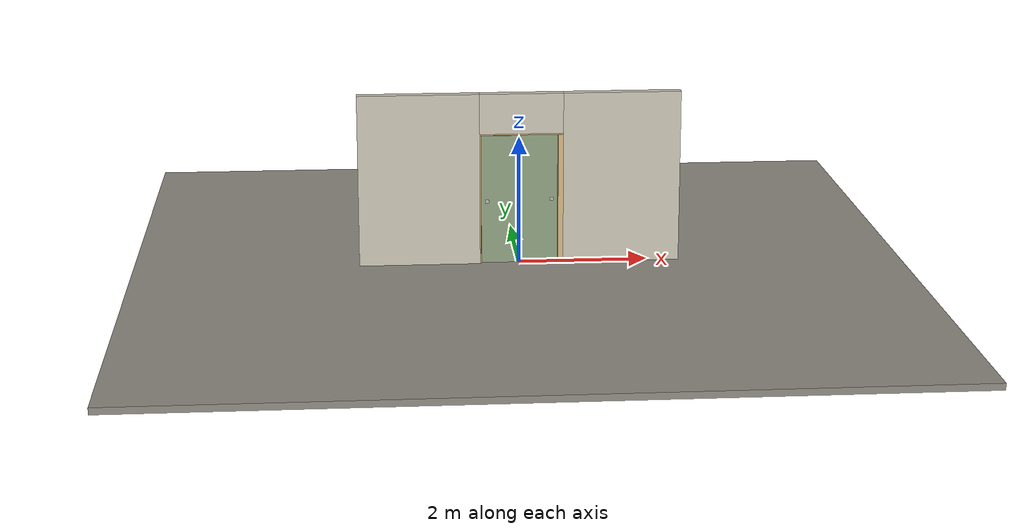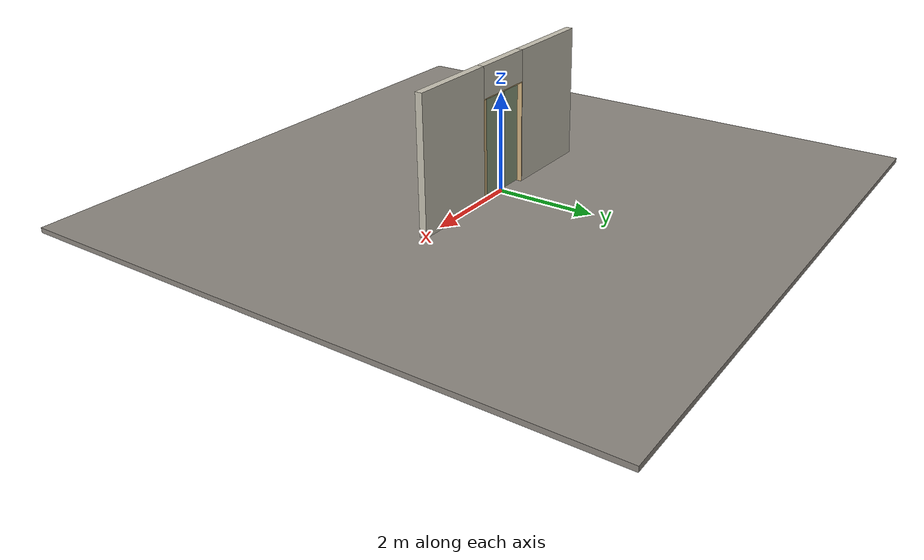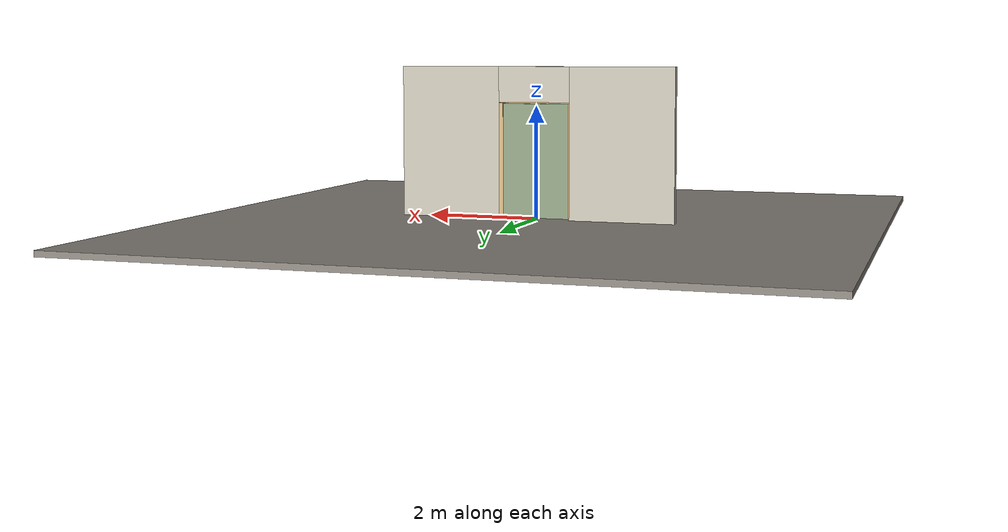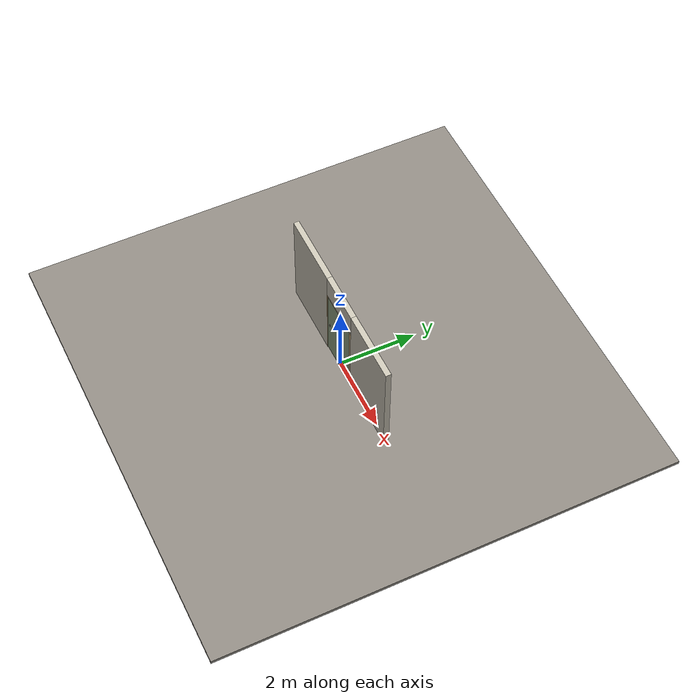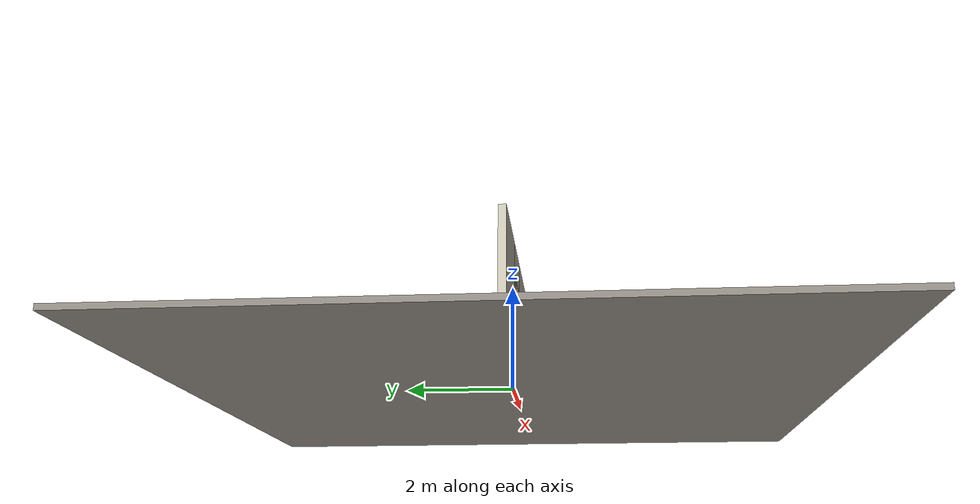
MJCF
<?xml version="1.0" ?>
<mujoco model="db0377_sliding_bypass_full">
  <compiler angle="radian" meshdir="../../hardware" texturedir="../../textures" autolimits="true" inertiafromgeom="false"/>
  <option timestep="0.002" integrator="implicitfast" cone="elliptic" impratio="10" noslip_iterations="3">
    <flag multiccd="enable"/>
  </option>
  <size memory="16M"/>
  <default>
    <geom condim="4" solref="0.005 1" solimp="0.95 0.99 0.001"/>
    <joint solreflimit="0.005 1" solimplimit="0.95 0.99 0.001"/>
    <tendon solreflimit="0.005 1"/>
    <equality solref="0.002 1"/>
  </default>
  <visual>
    <headlight ambient="0.4 0.4 0.4" diffuse="0.7 0.7 0.7" specular="0.2 0.2 0.2"/>
    <quality shadowsize="4096"/>
    <map znear="0.01" zfar="60"/>
  </visual>
  <asset>
    <material name="mat_floor" rgba="0.55 0.53 0.5 1" specular="0.2" shininess="0.15" reflectance="0"/>
    <material name="mat_wall" rgba="0.78 0.76 0.7 1" specular="0.2" shininess="0.1" reflectance="0"/>
    <material name="mat_frame" rgba="0.82 0.7 0.5 1" specular="0.2" shininess="0.45" reflectance="0"/>
    <material name="mat_track" rgba="0.8 0.81 0.83 1" specular="0.8" shininess="0.6" reflectance="0.4"/>
    <material name="mat_leaf_0" rgba="0.55 0.62 0.5 1" specular="0.2" shininess="0.5" reflectance="0"/>
    <material name="mat_leaf_0_louver" rgba="0.468 0.527 0.425 1" specular="0.2" shininess="0.4" reflectance="0"/>
    <material name="mat_roller" rgba="0.65 0.66 0.68 1" specular="0.74" shininess="0.5" reflectance="0.36"/>
    <material name="mat_op_nickel_satin" rgba="0.72 0.7 0.66 1" specular="0.8" shininess="0.65" reflectance="0.4"/>
    <material name="mat_leaf_1" rgba="0.55 0.62 0.5 1" specular="0.2" shininess="0.5" reflectance="0"/>
    <material name="mat_leaf_1_louver" rgba="0.468 0.527 0.425 1" specular="0.2" shininess="0.4" reflectance="0"/>
    <material name="mat_hook" rgba="0.75 0.76 0.77 1" specular="0.8" shininess="0.65" reflectance="0.4"/>
    <texture name="skybox" type="skybox" builtin="gradient" rgb1="0.6 0.7 0.85" rgb2="0.9 0.92 0.95" width="256" height="256"/>
  </asset>
  <worldbody>
    <light name="sun" pos="1.5 -2.5 4" dir="-0.3 0.5 -0.8" directional="true" diffuse="0.8 0.8 0.8" specular="0.3 0.3 0.3" castshadow="true"/>
    <light name="fill" pos="-1.5 2.5 3" dir="0.3 -0.5 -0.7" directional="true" diffuse="0.35 0.35 0.4" castshadow="false"/>
    <camera name="robot_view" pos="0 -2.54875 1.73965" xyaxes="1 0 0 0 0.26963 0.962964" fovy="52"/>
    <camera name="far_view" pos="0 2.54875 1.73965" xyaxes="-1 0 0 0 -0.26963 0.962964" fovy="52"/>
    <camera name="iso" pos="1.93705 -2.14095 2.14745" xyaxes="0.741536 0.670913 0 -0.242917 0.268487 0.932151" fovy="46"/>
    <camera name="detail_handle" pos="-0.327 -0.86 1.28" xyaxes="0.97561 0.219512 0 -0.070934 0.315262 0.94635" fovy="38"/>
    <geom name="floor" type="box" size="6 6 0.05" pos="0 0 -0.05" material="mat_floor" group="0" contype="1" conaffinity="1" friction="0.8 0.005 0.0001" density="2400"/>
    <geom name="wall_left" type="box" size="0.9405 0.0725 1.35" pos="-1.5595 0 1.35" material="mat_wall" group="0" contype="1" conaffinity="1" friction="0.6 0.005 0.0001" density="800"/>
    <geom name="wall_right" type="box" size="0.9105 0.0725 1.35" pos="1.5895 0 1.35" material="mat_wall" group="0" contype="1" conaffinity="1" friction="0.6 0.005 0.0001" density="800"/>
    <geom name="wall_header" type="box" size="0.649 0.0725 0.3145" pos="0.03 0 2.3855" material="mat_wall" group="0" contype="1" conaffinity="1" friction="0.6 0.005 0.0001" density="800"/>
    <geom name="jamb_l" type="box" size="0.0095 0.0725 1.026" pos="-0.6095 0 1.026" material="mat_frame" group="0" contype="1" conaffinity="1" friction="0.6 0.005 0.0001" density="300"/>
    <geom name="jamb_head" type="box" size="0.619 0.0725 0.0095" pos="0 0 2.0615" material="mat_frame" group="0" contype="1" conaffinity="1" friction="0.6 0.005 0.0001" density="300"/>
    <geom name="leaf_0_track_header" type="box" size="0.645 0.025 0.04" pos="-0.002 -0.0425 2.111" material="mat_track" group="0" contype="1" conaffinity="1" friction="0.6 0.005 0.0001" density="2700"/>
    <geom name="leaf_1_track_header" type="box" size="0.645 0.025 0.04" pos="0.002 0.0425 2.111" material="mat_track" group="0" contype="1" conaffinity="1" friction="0.6 0.005 0.0001" density="2700"/>
    <geom name="jamb_latch_0" type="box" size="0.0395 0.0725 1.026" pos="0.6395 0 1.026" material="mat_frame" group="0" contype="1" conaffinity="1" friction="0.6 0.005 0.0001" density="300"/>
    <site name="approach_point" pos="0 -1.5 0" quat="1 0 0 0" size="0.05" rgba="0.2 0.9 0.2 0.5" group="4"/>
    <site name="goal_point" pos="0 1.5 0" quat="1 0 0 0" size="0.05" rgba="0.2 0.9 0.2 0.5" group="4"/>
    <site name="door_plane_center" pos="0 0 1.026" quat="1 0 0 0" size="0.02" rgba="0.2 0.9 0.2 0.5" group="4"/>
    <body name="leaf_0" pos="-0.292 -0.0425 0">
      <inertial pos="-0.000068 -0.000006 1.028011" mass="9.569304" quat="0.499992 0.500011 -0.499988 0.500008" diaginertia="0.297704287 3.292293267 3.588042631"/>
      <joint name="leaf_0_slide" type="slide" axis="1 0 0" limited="true" range="0 0.564" damping="2.479715" frictionloss="7.338863" armature="0.5"/>
      <geom name="leaf_0_slab" type="box" size="0.305 0.0175 1.016" pos="0 0 1.028" material="mat_leaf_0" group="0" contype="1" conaffinity="1" friction="0.35 0.005 0.0001" density="1"/>
      <geom name="leaf_0_louver_0" type="box" size="0.215 0.002 0.026356" pos="0 0 0.260621" quat="0.953717 0.300706 0 0" material="mat_leaf_0_louver" group="1" contype="0" conaffinity="0" density="1"/>
      <geom name="leaf_0_louver_1" type="box" size="0.215 0.002 0.026356" pos="0 0 0.310824" quat="0.953717 0.300706 0 0" material="mat_leaf_0_louver" group="1" contype="0" conaffinity="0" density="1"/>
      <geom name="leaf_0_louver_2" type="box" size="0.215 0.002 0.026356" pos="0 0 0.361026" quat="0.953717 0.300706 0 0" material="mat_leaf_0_louver" group="1" contype="0" conaffinity="0" density="1"/>
      <geom name="leaf_0_louver_3" type="box" size="0.215 0.002 0.026356" pos="0 0 0.411228" quat="0.953717 0.300706 0 0" material="mat_leaf_0_louver" group="1" contype="0" conaffinity="0" density="1"/>
      <geom name="leaf_0_louver_4" type="box" size="0.215 0.002 0.026356" pos="0 0 0.461431" quat="0.953717 0.300706 0 0" material="mat_leaf_0_louver" group="1" contype="0" conaffinity="0" density="1"/>
      <geom name="leaf_0_louver_5" type="box" size="0.215 0.002 0.026356" pos="0 0 0.511633" quat="0.953717 0.300706 0 0" material="mat_leaf_0_louver" group="1" contype="0" conaffinity="0" density="1"/>
      <geom name="leaf_0_louver_6" type="box" size="0.215 0.002 0.026356" pos="0 0 0.561835" quat="0.953717 0.300706 0 0" material="mat_leaf_0_louver" group="1" contype="0" conaffinity="0" density="1"/>
      <geom name="leaf_0_louver_7" type="box" size="0.215 0.002 0.026356" pos="0 0 0.612038" quat="0.953717 0.300706 0 0" material="mat_leaf_0_louver" group="1" contype="0" conaffinity="0" density="1"/>
      <geom name="leaf_0_louver_8" type="box" size="0.215 0.002 0.026356" pos="0 0 0.66224" quat="0.953717 0.300706 0 0" material="mat_leaf_0_louver" group="1" contype="0" conaffinity="0" density="1"/>
      <geom name="leaf_0_louver_9" type="box" size="0.215 0.002 0.026356" pos="0 0 0.712442" quat="0.953717 0.300706 0 0" material="mat_leaf_0_louver" group="1" contype="0" conaffinity="0" density="1"/>
      <geom name="leaf_0_louver_10" type="box" size="0.215 0.002 0.026356" pos="0 0 0.762645" quat="0.953717 0.300706 0 0" material="mat_leaf_0_louver" group="1" contype="0" conaffinity="0" density="1"/>
      <geom name="leaf_0_louver_11" type="box" size="0.215 0.002 0.026356" pos="0 0 0.812847" quat="0.953717 0.300706 0 0" material="mat_leaf_0_louver" group="1" contype="0" conaffinity="0" density="1"/>
      <geom name="leaf_0_louver_12" type="box" size="0.215 0.002 0.026356" pos="0 0 0.863049" quat="0.953717 0.300706 0 0" material="mat_leaf_0_louver" group="1" contype="0" conaffinity="0" density="1"/>
      <geom name="leaf_0_louver_13" type="box" size="0.215 0.002 0.026356" pos="0 0 0.913252" quat="0.953717 0.300706 0 0" material="mat_leaf_0_louver" group="1" contype="0" conaffinity="0" density="1"/>
      <geom name="leaf_0_louver_14" type="box" size="0.215 0.002 0.026356" pos="0 0 0.963454" quat="0.953717 0.300706 0 0" material="mat_leaf_0_louver" group="1" contype="0" conaffinity="0" density="1"/>
      <geom name="leaf_0_louver_15" type="box" size="0.215 0.002 0.026356" pos="0 0 1.013656" quat="0.953717 0.300706 0 0" material="mat_leaf_0_louver" group="1" contype="0" conaffinity="0" density="1"/>
      <geom name="leaf_0_louver_16" type="box" size="0.215 0.002 0.026356" pos="0 0 1.063859" quat="0.953717 0.300706 0 0" material="mat_leaf_0_louver" group="1" contype="0" conaffinity="0" density="1"/>
      <geom name="leaf_0_louver_17" type="box" size="0.215 0.002 0.026356" pos="0 0 1.114061" quat="0.953717 0.300706 0 0" material="mat_leaf_0_louver" group="1" contype="0" conaffinity="0" density="1"/>
      <geom name="leaf_0_louver_18" type="box" size="0.215 0.002 0.026356" pos="0 0 1.164264" quat="0.953717 0.300706 0 0" material="mat_leaf_0_louver" group="1" contype="0" conaffinity="0" density="1"/>
      <geom name="leaf_0_louver_19" type="box" size="0.215 0.002 0.026356" pos="0 0 1.214466" quat="0.953717 0.300706 0 0" material="mat_leaf_0_louver" group="1" contype="0" conaffinity="0" density="1"/>
      <geom name="leaf_0_louver_20" type="box" size="0.215 0.002 0.026356" pos="0 0 1.264668" quat="0.953717 0.300706 0 0" material="mat_leaf_0_louver" group="1" contype="0" conaffinity="0" density="1"/>
      <geom name="leaf_0_louver_21" type="box" size="0.215 0.002 0.026356" pos="0 0 1.314871" quat="0.953717 0.300706 0 0" material="mat_leaf_0_louver" group="1" contype="0" conaffinity="0" density="1"/>
      <geom name="leaf_0_louver_22" type="box" size="0.215 0.002 0.026356" pos="0 0 1.365073" quat="0.953717 0.300706 0 0" material="mat_leaf_0_louver" group="1" contype="0" conaffinity="0" density="1"/>
      <geom name="leaf_0_louver_23" type="box" size="0.215 0.002 0.026356" pos="0 0 1.415275" quat="0.953717 0.300706 0 0" material="mat_leaf_0_louver" group="1" contype="0" conaffinity="0" density="1"/>
      <geom name="leaf_0_louver_24" type="box" size="0.215 0.002 0.026356" pos="0 0 1.465478" quat="0.953717 0.300706 0 0" material="mat_leaf_0_louver" group="1" contype="0" conaffinity="0" density="1"/>
      <geom name="leaf_0_louver_25" type="box" size="0.215 0.002 0.026356" pos="0 0 1.51568" quat="0.953717 0.300706 0 0" material="mat_leaf_0_louver" group="1" contype="0" conaffinity="0" density="1"/>
      <geom name="leaf_0_louver_26" type="box" size="0.215 0.002 0.026356" pos="0 0 1.565882" quat="0.953717 0.300706 0 0" material="mat_leaf_0_louver" group="1" contype="0" conaffinity="0" density="1"/>
      <geom name="leaf_0_louver_27" type="box" size="0.215 0.002 0.026356" pos="0 0 1.616085" quat="0.953717 0.300706 0 0" material="mat_leaf_0_louver" group="1" contype="0" conaffinity="0" density="1"/>
      <geom name="leaf_0_louver_28" type="box" size="0.215 0.002 0.026356" pos="0 0 1.666287" quat="0.953717 0.300706 0 0" material="mat_leaf_0_louver" group="1" contype="0" conaffinity="0" density="1"/>
      <geom name="leaf_0_louver_29" type="box" size="0.215 0.002 0.026356" pos="0 0 1.716489" quat="0.953717 0.300706 0 0" material="mat_leaf_0_louver" group="1" contype="0" conaffinity="0" density="1"/>
      <geom name="leaf_0_louver_30" type="box" size="0.215 0.002 0.026356" pos="0 0 1.766692" quat="0.953717 0.300706 0 0" material="mat_leaf_0_louver" group="1" contype="0" conaffinity="0" density="1"/>
      <geom name="leaf_0_louver_31" type="box" size="0.215 0.002 0.026356" pos="0 0 1.816894" quat="0.953717 0.300706 0 0" material="mat_leaf_0_louver" group="1" contype="0" conaffinity="0" density="1"/>
      <geom name="leaf_0_louver_32" type="box" size="0.215 0.002 0.026356" pos="0 0 1.867096" quat="0.953717 0.300706 0 0" material="mat_leaf_0_louver" group="1" contype="0" conaffinity="0" density="1"/>
      <geom name="leaf_0_louver_33" type="box" size="0.215 0.002 0.026356" pos="0 0 1.917299" quat="0.953717 0.300706 0 0" material="mat_leaf_0_louver" group="1" contype="0" conaffinity="0" density="1"/>
      <geom name="leaf_0_pull_n" type="box" size="0.0275 0.0005 0.0275" pos="-0.215 -0.018 1" material="mat_op_nickel_satin" group="1" contype="0" conaffinity="0" density="1000"/>
      <site name="leaf_0_pull_grip_n" pos="-0.215 -0.0175 1" quat="1 0 0 0" size="0.012" rgba="0.2 0.9 0.2 0.5" group="4"/>
      <site name="leaf_0_edge_mid" pos="-0.305 0 1.028" quat="1 0 0 0" size="0.02" rgba="0.2 0.9 0.2 0.5" group="4"/>
    </body>
    <body name="leaf_1" pos="0.292 0.0425 0">
      <inertial pos="0.000068 -0.000006 1.028011" mass="9.569304" quat="0.500008 0.499988 -0.500011 0.499992" diaginertia="0.297704287 3.292293267 3.588042631"/>
      <joint name="leaf_1_slide" type="slide" axis="-1 0 0" limited="true" range="0 0.564" damping="2.479715" frictionloss="7.338863" armature="0.5"/>
      <geom name="leaf_1_slab" type="box" size="0.305 0.0175 1.016" pos="0 0 1.028" material="mat_leaf_1" group="0" contype="1" conaffinity="1" friction="0.35 0.005 0.0001" density="1"/>
      <geom name="leaf_1_louver_0" type="box" size="0.215 0.002 0.026356" pos="0 0 0.260621" quat="0.953717 0.300706 0 0" material="mat_leaf_1_louver" group="1" contype="0" conaffinity="0" density="1"/>
      <geom name="leaf_1_louver_1" type="box" size="0.215 0.002 0.026356" pos="0 0 0.310824" quat="0.953717 0.300706 0 0" material="mat_leaf_1_louver" group="1" contype="0" conaffinity="0" density="1"/>
      <geom name="leaf_1_louver_2" type="box" size="0.215 0.002 0.026356" pos="0 0 0.361026" quat="0.953717 0.300706 0 0" material="mat_leaf_1_louver" group="1" contype="0" conaffinity="0" density="1"/>
      <geom name="leaf_1_louver_3" type="box" size="0.215 0.002 0.026356" pos="0 0 0.411228" quat="0.953717 0.300706 0 0" material="mat_leaf_1_louver" group="1" contype="0" conaffinity="0" density="1"/>
      <geom name="leaf_1_louver_4" type="box" size="0.215 0.002 0.026356" pos="0 0 0.461431" quat="0.953717 0.300706 0 0" material="mat_leaf_1_louver" group="1" contype="0" conaffinity="0" density="1"/>
      <geom name="leaf_1_louver_5" type="box" size="0.215 0.002 0.026356" pos="0 0 0.511633" quat="0.953717 0.300706 0 0" material="mat_leaf_1_louver" group="1" contype="0" conaffinity="0" density="1"/>
      <geom name="leaf_1_louver_6" type="box" size="0.215 0.002 0.026356" pos="0 0 0.561835" quat="0.953717 0.300706 0 0" material="mat_leaf_1_louver" group="1" contype="0" conaffinity="0" density="1"/>
      <geom name="leaf_1_louver_7" type="box" size="0.215 0.002 0.026356" pos="0 0 0.612038" quat="0.953717 0.300706 0 0" material="mat_leaf_1_louver" group="1" contype="0" conaffinity="0" density="1"/>
      <geom name="leaf_1_louver_8" type="box" size="0.215 0.002 0.026356" pos="0 0 0.66224" quat="0.953717 0.300706 0 0" material="mat_leaf_1_louver" group="1" contype="0" conaffinity="0" density="1"/>
      <geom name="leaf_1_louver_9" type="box" size="0.215 0.002 0.026356" pos="0 0 0.712442" quat="0.953717 0.300706 0 0" material="mat_leaf_1_louver" group="1" contype="0" conaffinity="0" density="1"/>
      <geom name="leaf_1_louver_10" type="box" size="0.215 0.002 0.026356" pos="0 0 0.762645" quat="0.953717 0.300706 0 0" material="mat_leaf_1_louver" group="1" contype="0" conaffinity="0" density="1"/>
      <geom name="leaf_1_louver_11" type="box" size="0.215 0.002 0.026356" pos="0 0 0.812847" quat="0.953717 0.300706 0 0" material="mat_leaf_1_louver" group="1" contype="0" conaffinity="0" density="1"/>
      <geom name="leaf_1_louver_12" type="box" size="0.215 0.002 0.026356" pos="0 0 0.863049" quat="0.953717 0.300706 0 0" material="mat_leaf_1_louver" group="1" contype="0" conaffinity="0" density="1"/>
      <geom name="leaf_1_louver_13" type="box" size="0.215 0.002 0.026356" pos="0 0 0.913252" quat="0.953717 0.300706 0 0" material="mat_leaf_1_louver" group="1" contype="0" conaffinity="0" density="1"/>
      <geom name="leaf_1_louver_14" type="box" size="0.215 0.002 0.026356" pos="0 0 0.963454" quat="0.953717 0.300706 0 0" material="mat_leaf_1_louver" group="1" contype="0" conaffinity="0" density="1"/>
      <geom name="leaf_1_louver_15" type="box" size="0.215 0.002 0.026356" pos="0 0 1.013656" quat="0.953717 0.300706 0 0" material="mat_leaf_1_louver" group="1" contype="0" conaffinity="0" density="1"/>
      <geom name="leaf_1_louver_16" type="box" size="0.215 0.002 0.026356" pos="0 0 1.063859" quat="0.953717 0.300706 0 0" material="mat_leaf_1_louver" group="1" contype="0" conaffinity="0" density="1"/>
      <geom name="leaf_1_louver_17" type="box" size="0.215 0.002 0.026356" pos="0 0 1.114061" quat="0.953717 0.300706 0 0" material="mat_leaf_1_louver" group="1" contype="0" conaffinity="0" density="1"/>
      <geom name="leaf_1_louver_18" type="box" size="0.215 0.002 0.026356" pos="0 0 1.164264" quat="0.953717 0.300706 0 0" material="mat_leaf_1_louver" group="1" contype="0" conaffinity="0" density="1"/>
      <geom name="leaf_1_louver_19" type="box" size="0.215 0.002 0.026356" pos="0 0 1.214466" quat="0.953717 0.300706 0 0" material="mat_leaf_1_louver" group="1" contype="0" conaffinity="0" density="1"/>
      <geom name="leaf_1_louver_20" type="box" size="0.215 0.002 0.026356" pos="0 0 1.264668" quat="0.953717 0.300706 0 0" material="mat_leaf_1_louver" group="1" contype="0" conaffinity="0" density="1"/>
      <geom name="leaf_1_louver_21" type="box" size="0.215 0.002 0.026356" pos="0 0 1.314871" quat="0.953717 0.300706 0 0" material="mat_leaf_1_louver" group="1" contype="0" conaffinity="0" density="1"/>
      <geom name="leaf_1_louver_22" type="box" size="0.215 0.002 0.026356" pos="0 0 1.365073" quat="0.953717 0.300706 0 0" material="mat_leaf_1_louver" group="1" contype="0" conaffinity="0" density="1"/>
      <geom name="leaf_1_louver_23" type="box" size="0.215 0.002 0.026356" pos="0 0 1.415275" quat="0.953717 0.300706 0 0" material="mat_leaf_1_louver" group="1" contype="0" conaffinity="0" density="1"/>
      <geom name="leaf_1_louver_24" type="box" size="0.215 0.002 0.026356" pos="0 0 1.465478" quat="0.953717 0.300706 0 0" material="mat_leaf_1_louver" group="1" contype="0" conaffinity="0" density="1"/>
      <geom name="leaf_1_louver_25" type="box" size="0.215 0.002 0.026356" pos="0 0 1.51568" quat="0.953717 0.300706 0 0" material="mat_leaf_1_louver" group="1" contype="0" conaffinity="0" density="1"/>
      <geom name="leaf_1_louver_26" type="box" size="0.215 0.002 0.026356" pos="0 0 1.565882" quat="0.953717 0.300706 0 0" material="mat_leaf_1_louver" group="1" contype="0" conaffinity="0" density="1"/>
      <geom name="leaf_1_louver_27" type="box" size="0.215 0.002 0.026356" pos="0 0 1.616085" quat="0.953717 0.300706 0 0" material="mat_leaf_1_louver" group="1" contype="0" conaffinity="0" density="1"/>
      <geom name="leaf_1_louver_28" type="box" size="0.215 0.002 0.026356" pos="0 0 1.666287" quat="0.953717 0.300706 0 0" material="mat_leaf_1_louver" group="1" contype="0" conaffinity="0" density="1"/>
      <geom name="leaf_1_louver_29" type="box" size="0.215 0.002 0.026356" pos="0 0 1.716489" quat="0.953717 0.300706 0 0" material="mat_leaf_1_louver" group="1" contype="0" conaffinity="0" density="1"/>
      <geom name="leaf_1_louver_30" type="box" size="0.215 0.002 0.026356" pos="0 0 1.766692" quat="0.953717 0.300706 0 0" material="mat_leaf_1_louver" group="1" contype="0" conaffinity="0" density="1"/>
      <geom name="leaf_1_louver_31" type="box" size="0.215 0.002 0.026356" pos="0 0 1.816894" quat="0.953717 0.300706 0 0" material="mat_leaf_1_louver" group="1" contype="0" conaffinity="0" density="1"/>
      <geom name="leaf_1_louver_32" type="box" size="0.215 0.002 0.026356" pos="0 0 1.867096" quat="0.953717 0.300706 0 0" material="mat_leaf_1_louver" group="1" contype="0" conaffinity="0" density="1"/>
      <geom name="leaf_1_louver_33" type="box" size="0.215 0.002 0.026356" pos="0 0 1.917299" quat="0.953717 0.300706 0 0" material="mat_leaf_1_louver" group="1" contype="0" conaffinity="0" density="1"/>
      <geom name="leaf_1_pull_n" type="box" size="0.0275 0.0005 0.0275" pos="0.215 -0.018 1" material="mat_op_nickel_satin" group="1" contype="0" conaffinity="0" density="1000"/>
      <site name="leaf_1_pull_grip_n" pos="0.215 -0.0175 1" quat="1 0 0 0" size="0.012" rgba="0.2 0.9 0.2 0.5" group="4"/>
      <site name="leaf_1_edge_mid" pos="0.305 0 1.028" quat="1 0 0 0" size="0.02" rgba="0.2 0.9 0.2 0.5" group="4"/>
    </body>
  </worldbody>
  <sensor>
    <jointpos name="leaf_0_slide_pos" joint="leaf_0_slide"/>
    <jointvel name="leaf_0_slide_vel" joint="leaf_0_slide"/>
    <jointpos name="leaf_1_slide_pos" joint="leaf_1_slide"/>
    <jointvel name="leaf_1_slide_vel" joint="leaf_1_slide"/>
  </sensor>
</mujoco>
